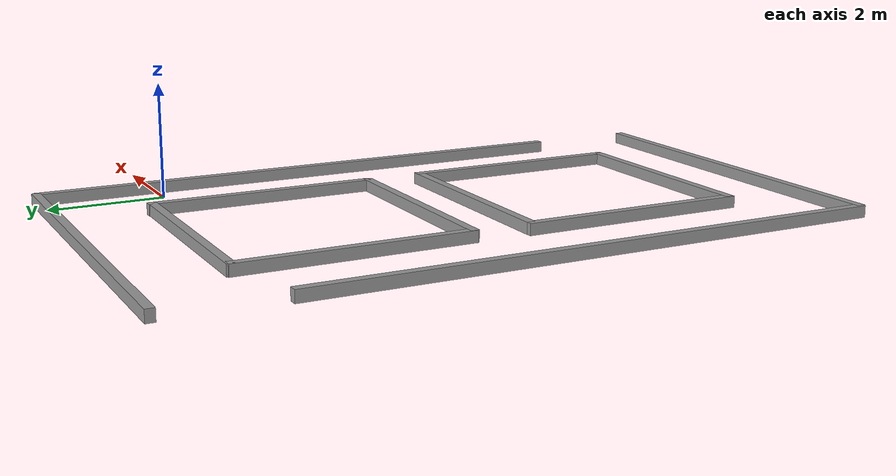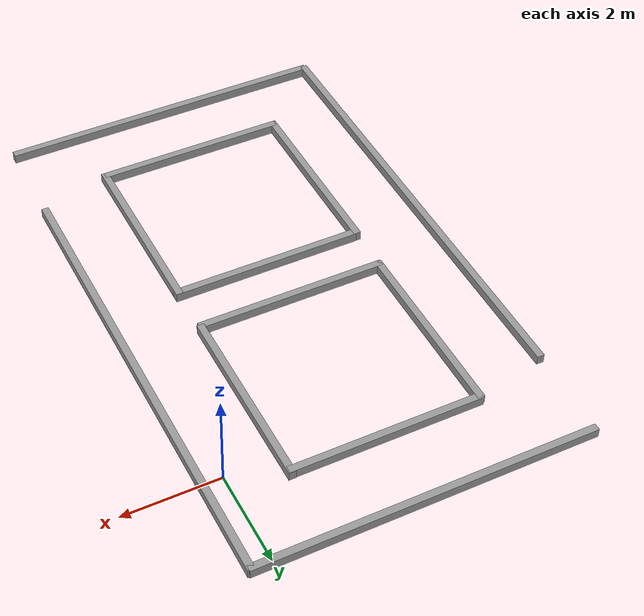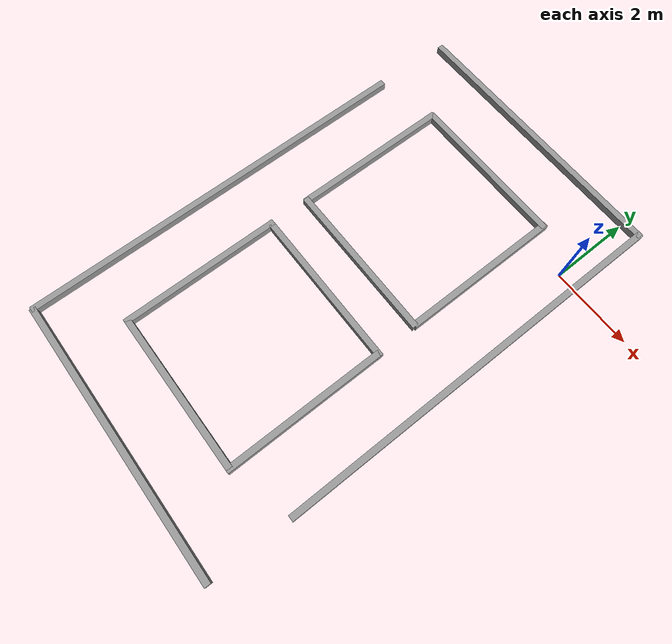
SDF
<?xml version='1.0'?>
<sdf version='1.4'>
  <model name='seven-segment'>
    <link name='Wall_11'>
      <collision name='Wall_11_Collision'>
        <geometry>
          <box>
            <size>4 0.15 0.2</size>
          </box>
        </geometry>
        <pose>0 0 0.1 0 -0 0</pose>
      </collision>
      <visual name='Wall_11_Visual'>
        <pose>0 0 0.1 0 -0 0</pose>
        <geometry>
          <box>
            <size>4 0.15 0.2</size>
          </box>
        </geometry>
        <material>
          <script>
            <uri>file://media/materials/scripts/gazebo.material</uri>
            <name>Gazebo/Grey</name>
          </script>
        </material>
      </visual>
      <velocity_decay>
        <linear>0</linear>
        <angular>0</angular>
      </velocity_decay>
      <pose>-3.04921 -3.41369 0 0 -0 0</pose>
    </link>
    <link name='Wall_13'>
      <collision name='Wall_13_Collision'>
        <geometry>
          <box>
            <size>4 0.15 0.2</size>
          </box>
        </geometry>
        <pose>0 0 0.1 0 -0 0</pose>
      </collision>
      <visual name='Wall_13_Visual'>
        <pose>0 0 0.1 0 -0 0</pose>
        <geometry>
          <box>
            <size>4 0.15 0.2</size>
          </box>
        </geometry>
        <material>
          <script>
            <uri>file://media/materials/scripts/gazebo.material</uri>
            <name>Gazebo/Grey</name>
          </script>
        </material>
      </visual>
      <velocity_decay>
        <linear>0</linear>
        <angular>0</angular>
      </velocity_decay>
      <pose>-4.99612 -1.46407 0 0 -0 1.5708</pose>
    </link>
    <link name='Wall_15'>
      <collision name='Wall_15_Collision'>
        <geometry>
          <box>
            <size>4 0.15 0.2</size>
          </box>
        </geometry>
        <pose>0 0 0.1 0 -0 0</pose>
      </collision>
      <visual name='Wall_15_Visual'>
        <pose>0 0 0.1 0 -0 0</pose>
        <geometry>
          <box>
            <size>4 0.15 0.2</size>
          </box>
        </geometry>
        <material>
          <script>
            <uri>file://media/materials/scripts/gazebo.material</uri>
            <name>Gazebo/Grey</name>
          </script>
        </material>
      </visual>
      <velocity_decay>
        <linear>0</linear>
        <angular>0</angular>
      </velocity_decay>
      <pose>-1.08976 -1.42719 0 0 0 -1.5708</pose>
    </link>
    <link name='Wall_17'>
      <collision name='Wall_17_Collision'>
        <geometry>
          <box>
            <size>4 0.15 0.2</size>
          </box>
        </geometry>
        <pose>0 0 0.1 0 -0 0</pose>
      </collision>
      <visual name='Wall_17_Visual'>
        <pose>0 0 0.1 0 -0 0</pose>
        <geometry>
          <box>
            <size>4 0.15 0.2</size>
          </box>
        </geometry>
        <material>
          <script>
            <uri>file://media/materials/scripts/gazebo.material</uri>
            <name>Gazebo/Grey</name>
          </script>
        </material>
      </visual>
      <velocity_decay>
        <linear>0</linear>
        <angular>0</angular>
      </velocity_decay>
      <pose>-2.99805 -4.441 0 0 -0 3.14159</pose>
    </link>
    <link name='Wall_19'>
      <collision name='Wall_19_Collision'>
        <geometry>
          <box>
            <size>4 0.15 0.2</size>
          </box>
        </geometry>
        <pose>0 0 0.1 0 -0 0</pose>
      </collision>
      <visual name='Wall_19_Visual'>
        <pose>0 0 0.1 0 -0 0</pose>
        <geometry>
          <box>
            <size>4 0.15 0.2</size>
          </box>
        </geometry>
        <material>
          <script>
            <uri>file://media/materials/scripts/gazebo.material</uri>
            <name>Gazebo/Grey</name>
          </script>
        </material>
      </visual>
      <velocity_decay>
        <linear>0</linear>
        <angular>0</angular>
      </velocity_decay>
      <pose>-3.0594 -8.29562 0 0 -0 3.14159</pose>
    </link>
    <link name='Wall_21'>
      <collision name='Wall_21_Collision'>
        <geometry>
          <box>
            <size>4 0.15 0.2</size>
          </box>
        </geometry>
        <pose>0 0 0.1 0 -0 0</pose>
      </collision>
      <visual name='Wall_21_Visual'>
        <pose>0 0 0.1 0 -0 0</pose>
        <geometry>
          <box>
            <size>4 0.15 0.2</size>
          </box>
        </geometry>
        <material>
          <script>
            <uri>file://media/materials/scripts/gazebo.material</uri>
            <name>Gazebo/Grey</name>
          </script>
        </material>
      </visual>
      <velocity_decay>
        <linear>0</linear>
        <angular>0</angular>
      </velocity_decay>
      <pose>-5.01936 -6.37062 0 0 -0 1.5708</pose>
    </link>
    <link name='Wall_23'>
      <collision name='Wall_23_Collision'>
        <geometry>
          <box>
            <size>4 0.15 0.2</size>
          </box>
        </geometry>
        <pose>0 0 0.1 0 -0 0</pose>
      </collision>
      <visual name='Wall_23_Visual'>
        <pose>0 0 0.1 0 -0 0</pose>
        <geometry>
          <box>
            <size>4 0.15 0.2</size>
          </box>
        </geometry>
        <material>
          <script>
            <uri>file://media/materials/scripts/gazebo.material</uri>
            <name>Gazebo/Grey</name>
          </script>
        </material>
      </visual>
      <velocity_decay>
        <linear>0</linear>
        <angular>0</angular>
      </velocity_decay>
      <pose>-1.07322 -6.37062 0 0 -0 1.5708</pose>
    </link>
    <link name='Wall_25'>
      <collision name='Wall_25_Collision'>
        <geometry>
          <box>
            <size>7 0.15 0.2</size>
          </box>
        </geometry>
        <pose>0 0 0.1 0 -0 0</pose>
      </collision>
      <visual name='Wall_25_Visual'>
        <pose>0 0 0.1 0 -0 0</pose>
        <geometry>
          <box>
            <size>7 0.15 0.2</size>
          </box>
        </geometry>
        <material>
          <script>
            <uri>file://media/materials/scripts/gazebo.material</uri>
            <name>Gazebo/Grey</name>
          </script>
        </material>
      </visual>
      <velocity_decay>
        <linear>0</linear>
        <angular>0</angular>
      </velocity_decay>
      <pose>-3.00993 2.06618 0 0 -0 3.14159</pose>
    </link>
    <link name='Wall_29'>
      <collision name='Wall_29_Collision'>
        <geometry>
          <box>
            <size>7 0.15 0.2</size>
          </box>
        </geometry>
        <pose>0 0 0.1 0 -0 0</pose>
      </collision>
      <visual name='Wall_29_Visual'>
        <pose>0 0 0.1 0 -0 0</pose>
        <geometry>
          <box>
            <size>7 0.15 0.2</size>
          </box>
        </geometry>
        <material>
          <script>
            <uri>file://media/materials/scripts/gazebo.material</uri>
            <name>Gazebo/Grey</name>
          </script>
        </material>
      </visual>
      <velocity_decay>
        <linear>0</linear>
        <angular>0</angular>
      </velocity_decay>
      <pose>-3.05846 -9.80973 0 0 -0 3.14159</pose>
    </link>
    <link name='Wall_32'>
      <collision name='Wall_32_Collision'>
        <geometry>
          <box>
            <size>10 0.15 0.2</size>
          </box>
        </geometry>
        <pose>0 0 0.1 0 -0 0</pose>
      </collision>
      <visual name='Wall_32_Visual'>
        <pose>0 0 0.1 0 -0 0</pose>
        <geometry>
          <box>
            <size>10 0.15 0.2</size>
          </box>
        </geometry>
        <material>
          <script>
            <uri>file://media/materials/scripts/gazebo.material</uri>
            <name>Gazebo/Grey</name>
          </script>
        </material>
      </visual>
      <velocity_decay>
        <linear>0</linear>
        <angular>0</angular>
      </velocity_decay>
      <pose>-6.53636 -4.84759 0 0 0 -1.5708</pose>
    </link>
    <link name='Wall_34'>
      <collision name='Wall_34_Collision'>
        <geometry>
          <box>
            <size>10 0.15 0.2</size>
          </box>
        </geometry>
        <pose>0 0 0.1 0 -0 0</pose>
      </collision>
      <visual name='Wall_34_Visual'>
        <pose>0 0 0.1 0 -0 0</pose>
        <geometry>
          <box>
            <size>10 0.15 0.2</size>
          </box>
        </geometry>
        <material>
          <script>
            <uri>file://media/materials/scripts/gazebo.material</uri>
            <name>Gazebo/Grey</name>
          </script>
        </material>
      </visual>
      <velocity_decay>
        <linear>0</linear>
        <angular>0</angular>
      </velocity_decay>
      <pose>0.444838 -2.88174 0 0 -0 1.5708</pose>
    </link>
    <link name='Wall_9'>
      <collision name='Wall_9_Collision'>
        <geometry>
          <box>
            <size>4 0.15 0.2</size>
          </box>
        </geometry>
        <pose>0 0 0.1 0 -0 0</pose>
      </collision>
      <visual name='Wall_9_Visual'>
        <pose>0 0 0.1 0 -0 0</pose>
        <geometry>
          <box>
            <size>4 0.15 0.2</size>
          </box>
        </geometry>
        <material>
          <script>
            <uri>file://media/materials/scripts/gazebo.material</uri>
            <name>Gazebo/Grey</name>
          </script>
        </material>
      </visual>
      <velocity_decay>
        <linear>0</linear>
        <angular>0</angular>
      </velocity_decay>
      <pose>-3.04071 0.489165 0 0 -0 0</pose>
    </link>
    <static>1</static>
  </model>
</sdf>
